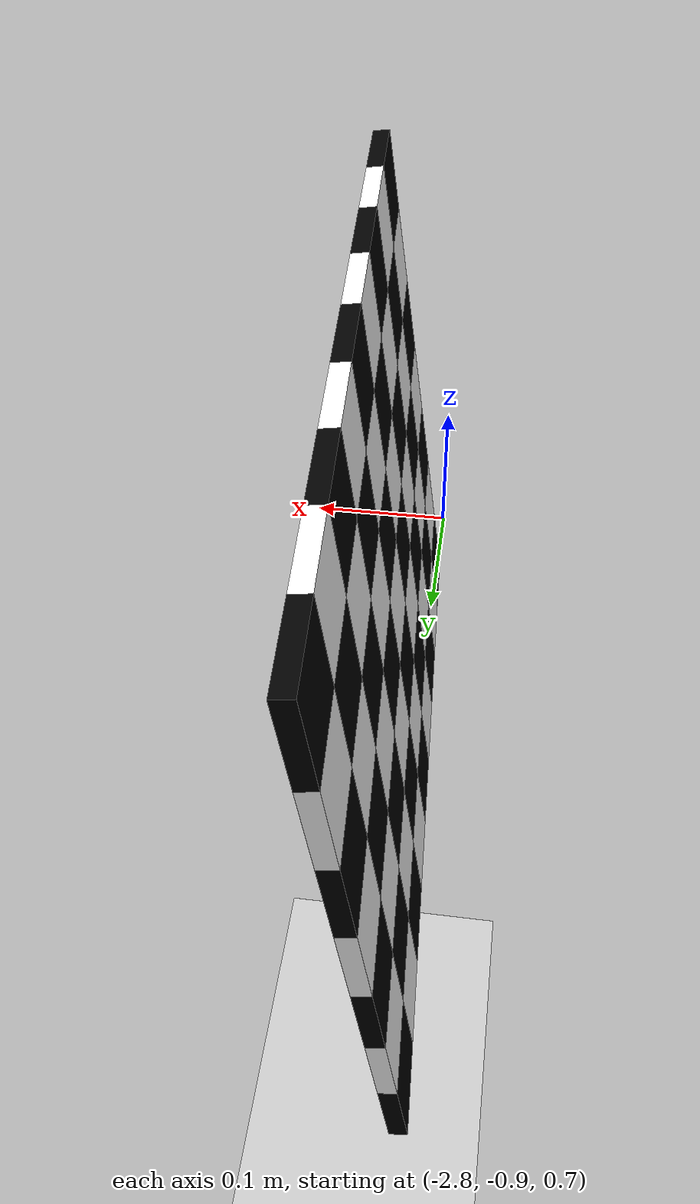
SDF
<sdf version="1.5">
 <world name="default">
  <model name="ground_plane">
   <static>1</static>
   <link name="link">
    <collision name="collision">
     <geometry><plane><normal>0 0 1</normal><size>100 100</size></plane></geometry>
     <surface><friction><ode><mu>100</mu><mu2>50</mu2></ode></friction></surface>
    </collision>
    <visual name="visual">
     <cast_shadows>0</cast_shadows>
     <geometry><plane><normal>0 0 1</normal><size>100 100</size></plane></geometry>
     <material>
      <script><uri>file://media/materials/scripts/gazebo.material</uri><name>Gazebo/Grey</name></script>
     </material>
    </visual>
    <velocity_decay><linear>0</linear><angular>0</angular></velocity_decay>
   </link>
  </model>
  <model name="checkerboard">
   <static>1</static>
   <link name="square_01">
    <visual name="visual">
     <geometry><box><size>0.05 0.05 0.01</size></box></geometry>
     <material><diffuse>0 0 0 1</diffuse><specular>0 0 0 1</specular><ambient>0 0 0 1</ambient></material>
    </visual>
    <velocity_decay><linear>0</linear><angular>0</angular></velocity_decay>
   </link>
   <link name="square_02">
    <pose>0.05 0 0 0 -0 0</pose>
    <visual name="visual">
     <geometry><box><size>0.05 0.05 0.01</size></box></geometry>
     <material><diffuse>1 1 1 1</diffuse><specular>1 1 1 1</specular><ambient>1 1 1 1</ambient></material>
    </visual>
    <velocity_decay><linear>0</linear><angular>0</angular></velocity_decay>
   </link>
   <link name="square_03">
    <pose>0.1 0 0 0 -0 0</pose>
    <visual name="visual">
     <geometry><box><size>0.05 0.05 0.01</size></box></geometry>
     <material><diffuse>0 0 0 1</diffuse><specular>0 0 0 1</specular><ambient>0 0 0 1</ambient></material>
    </visual>
    <velocity_decay><linear>0</linear><angular>0</angular></velocity_decay>
   </link>
   <link name="square_00.4">
    <pose>0.15 0 0 0 -0 0</pose>
    <visual name="visual">
     <geometry><box><size>0.05 0.05 0.01</size></box></geometry>
     <material><diffuse>1 1 1 1</diffuse><specular>1 1 1 1</specular><ambient>1 1 1 1</ambient></material>
    </visual>
    <velocity_decay><linear>0</linear><angular>0</angular></velocity_decay>
   </link>
   <link name="square_05">
    <pose>0.2 0 0 0 -0 0</pose>
    <visual name="visual">
     <geometry><box><size>0.05 0.05 0.01</size></box></geometry>
     <material><diffuse>0 0 0 1</diffuse><specular>0 0 0 1</specular><ambient>0 0 0 1</ambient></material>
    </visual>
    <velocity_decay><linear>0</linear><angular>0</angular></velocity_decay>
   </link>
   <link name="square_06">
    <pose>0.25 0 0 0 -0 0</pose>
    <visual name="visual">
     <geometry><box><size>0.05 0.05 0.01</size></box></geometry>
     <material><diffuse>1 1 1 1</diffuse><specular>1 1 1 1</specular><ambient>1 1 1 1</ambient></material>
    </visual>
    <velocity_decay><linear>0</linear><angular>0</angular></velocity_decay>
   </link>
   <link name="square_07">
    <pose>0.3 0 0 0 -0 0</pose>
    <visual name="visual">
     <geometry><box><size>0.05 0.05 0.01</size></box></geometry>
     <material><diffuse>0 0 0 1</diffuse><specular>0 0 0 1</specular><ambient>0 0 0 1</ambient></material>
    </visual>
    <velocity_decay><linear>0</linear><angular>0</angular></velocity_decay>
   </link>
   <link name="square_08">
    <pose>0.35 0 0 0 -0 0</pose>
    <visual name="visual">
     <geometry><box><size>0.05 0.05 0.01</size></box></geometry>
     <material><diffuse>1 1 1 1</diffuse><specular>1 1 1 1</specular><ambient>1 1 1 1</ambient></material>
    </visual>
    <velocity_decay><linear>0</linear><angular>0</angular></velocity_decay>
   </link>
   <link name="square_09">
    <pose>0.4 0 0 0 -0 0</pose>
    <visual name="visual">
     <geometry><box><size>0.05 0.05 0.01</size></box></geometry>
     <material><diffuse>0 0 0 1</diffuse><specular>0 0 0 1</specular><ambient>0 0 0 1</ambient></material>
    </visual>
    <velocity_decay><linear>0</linear><angular>0</angular></velocity_decay>
   </link>
   <link name="square_0.051">
    <pose>0 0.05 0 0 -0 0</pose>
    <visual name="visual">
     <geometry><box><size>0.05 0.05 0.01</size></box></geometry>
     <material><diffuse>1 1 1 1</diffuse><specular>1 1 1 1</specular><ambient>1 1 1 1</ambient></material>
    </visual>
    <velocity_decay><linear>0</linear><angular>0</angular></velocity_decay>
   </link>
   <link name="square_0.052">
    <pose>0.05 0.05 0 0 -0 0</pose>
    <visual name="visual">
     <geometry><box><size>0.05 0.05 0.01</size></box></geometry>
     <material><diffuse>0 0 0 1</diffuse><specular>0 0 0 1</specular><ambient>0 0 0 1</ambient></material>
    </visual>
    <velocity_decay><linear>0</linear><angular>0</angular></velocity_decay>
   </link>
   <link name="square_0.053">
    <pose>0.1 0.05 0 0 -0 0</pose>
    <visual name="visual">
     <geometry><box><size>0.05 0.05 0.01</size></box></geometry>
     <material><diffuse>1 1 1 1</diffuse><specular>1 1 1 1</specular><ambient>1 1 1 1</ambient></material>
    </visual>
    <velocity_decay><linear>0</linear><angular>0</angular></velocity_decay>
   </link>
   <link name="square_0.050.4">
    <pose>0.15 0.05 0 0 -0 0</pose>
    <visual name="visual">
     <geometry><box><size>0.05 0.05 0.01</size></box></geometry>
     <material><diffuse>0 0 0 1</diffuse><specular>0 0 0 1</specular><ambient>0 0 0 1</ambient></material>
    </visual>
    <velocity_decay><linear>0</linear><angular>0</angular></velocity_decay>
   </link>
   <link name="square_0.055">
    <pose>0.2 0.05 0 0 -0 0</pose>
    <visual name="visual">
     <geometry><box><size>0.05 0.05 0.01</size></box></geometry>
     <material><diffuse>1 1 1 1</diffuse><specular>1 1 1 1</specular><ambient>1 1 1 1</ambient></material>
    </visual>
    <velocity_decay><linear>0</linear><angular>0</angular></velocity_decay>
   </link>
   <link name="square_0.056">
    <pose>0.25 0.05 0 0 -0 0</pose>
    <visual name="visual">
     <geometry><box><size>0.05 0.05 0.01</size></box></geometry>
     <material><diffuse>0 0 0 1</diffuse><specular>0 0 0 1</specular><ambient>0 0 0 1</ambient></material>
    </visual>
    <velocity_decay><linear>0</linear><angular>0</angular></velocity_decay>
   </link>
   <link name="square_0.057">
    <pose>0.3 0.05 0 0 -0 0</pose>
    <visual name="visual">
     <geometry><box><size>0.05 0.05 0.01</size></box></geometry>
     <material><diffuse>1 1 1 1</diffuse><specular>1 1 1 1</specular><ambient>1 1 1 1</ambient></material>
    </visual>
    <velocity_decay><linear>0</linear><angular>0</angular></velocity_decay>
   </link>
   <link name="square_0.058">
    <pose>0.35 0.05 0 0 -0 0</pose>
    <visual name="visual">
     <geometry><box><size>0.05 0.05 0.01</size></box></geometry>
     <material><diffuse>0 0 0 1</diffuse><specular>0 0 0 1</specular><ambient>0 0 0 1</ambient></material>
    </visual>
    <velocity_decay><linear>0</linear><angular>0</angular></velocity_decay>
   </link>
   <link name="square_0.059">
    <pose>0.4 0.05 0 0 -0 0</pose>
    <visual name="visual">
     <geometry><box><size>0.05 0.05 0.01</size></box></geometry>
     <material><diffuse>1 1 1 1</diffuse><specular>1 1 1 1</specular><ambient>1 1 1 1</ambient></material>
    </visual>
    <velocity_decay><linear>0</linear><angular>0</angular></velocity_decay>
   </link>
   <link name="square_0.101">
    <pose>0 0.1 0 0 -0 0</pose>
    <visual name="visual">
     <geometry><box><size>0.05 0.05 0.01</size></box></geometry>
     <material><diffuse>0 0 0 1</diffuse><specular>0 0 0 1</specular><ambient>0 0 0 1</ambient></material>
    </visual>
    <velocity_decay><linear>0</linear><angular>0</angular></velocity_decay>
   </link>
   <link name="square_0.102">
    <pose>0.05 0.1 0 0 -0 0</pose>
    <visual name="visual">
     <geometry><box><size>0.05 0.05 0.01</size></box></geometry>
     <material><diffuse>1 1 1 1</diffuse><specular>1 1 1 1</specular><ambient>1 1 1 1</ambient></material>
    </visual>
    <velocity_decay><linear>0</linear><angular>0</angular></velocity_decay>
   </link>
   <link name="square_0.103">
    <pose>0.1 0.1 0 0 -0 0</pose>
    <visual name="visual">
     <geometry><box><size>0.05 0.05 0.01</size></box></geometry>
     <material><diffuse>0 0 0 1</diffuse><specular>0 0 0 1</specular><ambient>0 0 0 1</ambient></material>
    </visual>
    <velocity_decay><linear>0</linear><angular>0</angular></velocity_decay>
   </link>
   <link name="square_0.100.4">
    <pose>0.15 0.1 0 0 -0 0</pose>
    <visual name="visual">
     <geometry><box><size>0.05 0.05 0.01</size></box></geometry>
     <material><diffuse>1 1 1 1</diffuse><specular>1 1 1 1</specular><ambient>1 1 1 1</ambient></material>
    </visual>
    <velocity_decay><linear>0</linear><angular>0</angular></velocity_decay>
   </link>
   <link name="square_0.105">
    <pose>0.2 0.1 0 0 -0 0</pose>
    <visual name="visual">
     <geometry><box><size>0.05 0.05 0.01</size></box></geometry>
     <material><diffuse>0 0 0 1</diffuse><specular>0 0 0 1</specular><ambient>0 0 0 1</ambient></material>
    </visual>
    <velocity_decay><linear>0</linear><angular>0</angular></velocity_decay>
   </link>
   <link name="square_0.106">
    <pose>0.25 0.1 0 0 -0 0</pose>
    <visual name="visual">
     <geometry><box><size>0.05 0.05 0.01</size></box></geometry>
     <material><diffuse>1 1 1 1</diffuse><specular>1 1 1 1</specular><ambient>1 1 1 1</ambient></material>
    </visual>
    <velocity_decay><linear>0</linear><angular>0</angular></velocity_decay>
   </link>
   <link name="square_0.107">
    <pose>0.3 0.1 0 0 -0 0</pose>
    <visual name="visual">
     <geometry><box><size>0.05 0.05 0.01</size></box></geometry>
     <material><diffuse>0 0 0 1</diffuse><specular>0 0 0 1</specular><ambient>0 0 0 1</ambient></material>
    </visual>
    <velocity_decay><linear>0</linear><angular>0</angular></velocity_decay>
   </link>
   <link name="square_0.108">
    <pose>0.35 0.1 0 0 -0 0</pose>
    <visual name="visual">
     <geometry><box><size>0.05 0.05 0.01</size></box></geometry>
     <material><diffuse>1 1 1 1</diffuse><specular>1 1 1 1</specular><ambient>1 1 1 1</ambient></material>
    </visual>
    <velocity_decay><linear>0</linear><angular>0</angular></velocity_decay>
   </link>
   <link name="square_0.109">
    <pose>0.4 0.1 0 0 -0 0</pose>
    <visual name="visual">
     <geometry><box><size>0.05 0.05 0.01</size></box></geometry>
     <material><diffuse>0 0 0 1</diffuse><specular>0 0 0 1</specular><ambient>0 0 0 1</ambient></material>
    </visual>
    <velocity_decay><linear>0</linear><angular>0</angular></velocity_decay>
   </link>
   <link name="square_0.151">
    <pose>0 0.15 0 0 -0 0</pose>
    <visual name="visual">
     <geometry><box><size>0.05 0.05 0.01</size></box></geometry>
     <material><diffuse>1 1 1 1</diffuse><specular>1 1 1 1</specular><ambient>1 1 1 1</ambient></material>
    </visual>
    <velocity_decay><linear>0</linear><angular>0</angular></velocity_decay>
   </link>
   <link name="square_0.152">
    <pose>0.05 0.15 0 0 -0 0</pose>
    <visual name="visual">
     <geometry><box><size>0.05 0.05 0.01</size></box></geometry>
     <material><diffuse>0 0 0 1</diffuse><specular>0 0 0 1</specular><ambient>0 0 0 1</ambient></material>
    </visual>
    <velocity_decay><linear>0</linear><angular>0</angular></velocity_decay>
   </link>
   <link name="square_0.153">
    <pose>0.1 0.15 0 0 -0 0</pose>
    <visual name="visual">
     <geometry><box><size>0.05 0.05 0.01</size></box></geometry>
     <material><diffuse>1 1 1 1</diffuse><specular>1 1 1 1</specular><ambient>1 1 1 1</ambient></material>
    </visual>
    <velocity_decay><linear>0</linear><angular>0</angular></velocity_decay>
   </link>
   <link name="square_0.150.4">
    <pose>0.15 0.15 0 0 -0 0</pose>
    <visual name="visual">
     <geometry><box><size>0.05 0.05 0.01</size></box></geometry>
     <material><diffuse>0 0 0 1</diffuse><specular>0 0 0 1</specular><ambient>0 0 0 1</ambient></material>
    </visual>
    <velocity_decay><linear>0</linear><angular>0</angular></velocity_decay>
   </link>
   <link name="square_0.155">
    <pose>0.2 0.15 0 0 -0 0</pose>
    <visual name="visual">
     <geometry><box><size>0.05 0.05 0.01</size></box></geometry>
     <material><diffuse>1 1 1 1</diffuse><specular>1 1 1 1</specular><ambient>1 1 1 1</ambient></material>
    </visual>
    <velocity_decay><linear>0</linear><angular>0</angular></velocity_decay>
   </link>
   <link name="square_0.156">
    <pose>0.25 0.15 0 0 -0 0</pose>
    <visual name="visual">
     <geometry><box><size>0.05 0.05 0.01</size></box></geometry>
     <material><diffuse>0 0 0 1</diffuse><specular>0 0 0 1</specular><ambient>0 0 0 1</ambient></material>
    </visual>
    <velocity_decay><linear>0</linear><angular>0</angular></velocity_decay>
   </link>
   <link name="square_0.157">
    <pose>0.3 0.15 0 0 -0 0</pose>
    <visual name="visual">
     <geometry><box><size>0.05 0.05 0.01</size></box></geometry>
     <material><diffuse>1 1 1 1</diffuse><specular>1 1 1 1</specular><ambient>1 1 1 1</ambient></material>
    </visual>
    <velocity_decay><linear>0</linear><angular>0</angular></velocity_decay>
   </link>
   <link name="square_0.158">
    <pose>0.35 0.15 0 0 -0 0</pose>
    <visual name="visual">
     <geometry><box><size>0.05 0.05 0.01</size></box></geometry>
     <material><diffuse>0 0 0 1</diffuse><specular>0 0 0 1</specular><ambient>0 0 0 1</ambient></material>
    </visual>
    <velocity_decay><linear>0</linear><angular>0</angular></velocity_decay>
   </link>
   <link name="square_0.159">
    <pose>0.4 0.15 0 0 -0 0</pose>
    <visual name="visual">
     <geometry><box><size>0.05 0.05 0.01</size></box></geometry>
     <material><diffuse>1 1 1 1</diffuse><specular>1 1 1 1</specular><ambient>1 1 1 1</ambient></material>
    </visual>
    <velocity_decay><linear>0</linear><angular>0</angular></velocity_decay>
   </link>
   <link name="square_0.21">
    <pose>0 0.2 0 0 -0 0</pose>
    <visual name="visual">
     <geometry><box><size>0.05 0.05 0.01</size></box></geometry>
     <material><diffuse>0 0 0 1</diffuse><specular>0 0 0 1</specular><ambient>0 0 0 1</ambient></material>
    </visual>
    <velocity_decay><linear>0</linear><angular>0</angular></velocity_decay>
   </link>
   <link name="square_0.22">
    <pose>0.05 0.2 0 0 -0 0</pose>
    <visual name="visual">
     <geometry><box><size>0.05 0.05 0.01</size></box></geometry>
     <material><diffuse>1 1 1 1</diffuse><specular>1 1 1 1</specular><ambient>1 1 1 1</ambient></material>
    </visual>
    <velocity_decay><linear>0</linear><angular>0</angular></velocity_decay>
   </link>
   <link name="square_0.23">
    <pose>0.1 0.2 0 0 -0 0</pose>
    <visual name="visual">
     <geometry><box><size>0.05 0.05 0.01</size></box></geometry>
     <material><diffuse>0 0 0 1</diffuse><specular>0 0 0 1</specular><ambient>0 0 0 1</ambient></material>
    </visual>
    <velocity_decay><linear>0</linear><angular>0</angular></velocity_decay>
   </link>
   <link name="square_0.20.4">
    <pose>0.15 0.2 0 0 -0 0</pose>
    <visual name="visual">
     <geometry><box><size>0.05 0.05 0.01</size></box></geometry>
     <material><diffuse>1 1 1 1</diffuse><specular>1 1 1 1</specular><ambient>1 1 1 1</ambient></material>
    </visual>
    <velocity_decay><linear>0</linear><angular>0</angular></velocity_decay>
   </link>
   <link name="square_0.25">
    <pose>0.2 0.2 0 0 -0 0</pose>
    <visual name="visual">
     <geometry><box><size>0.05 0.05 0.01</size></box></geometry>
     <material><diffuse>0 0 0 1</diffuse><specular>0 0 0 1</specular><ambient>0 0 0 1</ambient></material>
    </visual>
    <velocity_decay><linear>0</linear><angular>0</angular></velocity_decay>
   </link>
   <link name="square_0.26">
    <pose>0.25 0.2 0 0 -0 0</pose>
    <visual name="visual">
     <geometry><box><size>0.05 0.05 0.01</size></box></geometry>
     <material><diffuse>1 1 1 1</diffuse><specular>1 1 1 1</specular><ambient>1 1 1 1</ambient></material>
    </visual>
    <velocity_decay><linear>0</linear><angular>0</angular></velocity_decay>
   </link>
   <link name="square_0.27">
    <pose>0.3 0.2 0 0 -0 0</pose>
    <visual name="visual">
     <geometry><box><size>0.05 0.05 0.01</size></box></geometry>
     <material><diffuse>0 0 0 1</diffuse><specular>0 0 0 1</specular><ambient>0 0 0 1</ambient></material>
    </visual>
    <velocity_decay><linear>0</linear><angular>0</angular></velocity_decay>
   </link>
   <link name="square_0.28">
    <pose>0.35 0.2 0 0 -0 0</pose>
    <visual name="visual">
     <geometry><box><size>0.05 0.05 0.01</size></box></geometry>
     <material><diffuse>1 1 1 1</diffuse><specular>1 1 1 1</specular><ambient>1 1 1 1</ambient></material>
    </visual>
    <velocity_decay><linear>0</linear><angular>0</angular></velocity_decay>
   </link>
   <link name="square_0.29">
    <pose>0.4 0.2 0 0 -0 0</pose>
    <visual name="visual">
     <geometry><box><size>0.05 0.05 0.01</size></box></geometry>
     <material><diffuse>0 0 0 1</diffuse><specular>0 0 0 1</specular><ambient>0 0 0 1</ambient></material>
    </visual>
    <velocity_decay><linear>0</linear><angular>0</angular></velocity_decay>
   </link>
   <link name="square_0.251">
    <pose>0 0.25 0 0 -0 0</pose>
    <visual name="visual">
     <geometry><box><size>0.05 0.05 0.01</size></box></geometry>
     <material><diffuse>1 1 1 1</diffuse><specular>1 1 1 1</specular><ambient>1 1 1 1</ambient></material>
    </visual>
    <velocity_decay><linear>0</linear><angular>0</angular></velocity_decay>
   </link>
   <link name="square_0.252">
    <pose>0.05 0.25 0 0 -0 0</pose>
    <visual name="visual">
     <geometry><box><size>0.05 0.05 0.01</size></box></geometry>
     <material><diffuse>0 0 0 1</diffuse><specular>0 0 0 1</specular><ambient>0 0 0 1</ambient></material>
    </visual>
    <velocity_decay><linear>0</linear><angular>0</angular></velocity_decay>
   </link>
   <link name="square_0.253">
    <pose>0.1 0.25 0 0 -0 0</pose>
    <visual name="visual">
     <geometry><box><size>0.05 0.05 0.01</size></box></geometry>
     <material><diffuse>1 1 1 1</diffuse><specular>1 1 1 1</specular><ambient>1 1 1 1</ambient></material>
    </visual>
    <velocity_decay><linear>0</linear><angular>0</angular></velocity_decay>
   </link>
   <link name="square_0.250.4">
    <pose>0.15 0.25 0 0 -0 0</pose>
    <visual name="visual">
     <geometry><box><size>0.05 0.05 0.01</size></box></geometry>
     <material><diffuse>0 0 0 1</diffuse><specular>0 0 0 1</specular><ambient>0 0 0 1</ambient></material>
    </visual>
    <velocity_decay><linear>0</linear><angular>0</angular></velocity_decay>
   </link>
   <link name="square_0.255">
    <pose>0.2 0.25 0 0 -0 0</pose>
    <visual name="visual">
     <geometry><box><size>0.05 0.05 0.01</size></box></geometry>
     <material><diffuse>1 1 1 1</diffuse><specular>1 1 1 1</specular><ambient>1 1 1 1</ambient></material>
    </visual>
    <velocity_decay><linear>0</linear><angular>0</angular></velocity_decay>
   </link>
   <link name="square_0.256">
    <pose>0.25 0.25 0 0 -0 0</pose>
    <visual name="visual">
     <geometry><box><size>0.05 0.05 0.01</size></box></geometry>
     <material><diffuse>0 0 0 1</diffuse><specular>0 0 0 1</specular><ambient>0 0 0 1</ambient></material>
    </visual>
    <velocity_decay><linear>0</linear><angular>0</angular></velocity_decay>
   </link>
   <link name="square_0.257">
    <pose>0.3 0.25 0 0 -0 0</pose>
    <visual name="visual">
     <geometry><box><size>0.05 0.05 0.01</size></box></geometry>
     <material><diffuse>1 1 1 1</diffuse><specular>1 1 1 1</specular><ambient>1 1 1 1</ambient></material>
    </visual>
    <velocity_decay><linear>0</linear><angular>0</angular></velocity_decay>
   </link>
   <link name="square_0.258">
    <pose>0.35 0.25 0 0 -0 0</pose>
    <visual name="visual">
     <geometry><box><size>0.05 0.05 0.01</size></box></geometry>
     <material><diffuse>0 0 0 1</diffuse><specular>0 0 0 1</specular><ambient>0 0 0 1</ambient></material>
    </visual>
    <velocity_decay><linear>0</linear><angular>0</angular></velocity_decay>
   </link>
   <link name="square_0.259">
    <pose>0.4 0.25 0 0 -0 0</pose>
    <visual name="visual">
     <geometry><box><size>0.05 0.05 0.01</size></box></geometry>
     <material><diffuse>1 1 1 1</diffuse><specular>1 1 1 1</specular><ambient>1 1 1 1</ambient></material>
    </visual>
    <velocity_decay><linear>0</linear><angular>0</angular></velocity_decay>
   </link>
   <link name="square_0.31">
    <pose>0 0.3 0 0 -0 0</pose>
    <visual name="visual">
     <geometry><box><size>0.05 0.05 0.01</size></box></geometry>
     <material><diffuse>0 0 0 1</diffuse><specular>0 0 0 1</specular><ambient>0 0 0 1</ambient></material>
    </visual>
    <velocity_decay><linear>0</linear><angular>0</angular></velocity_decay>
   </link>
   <link name="square_0.32">
    <pose>0.05 0.3 0 0 -0 0</pose>
    <visual name="visual">
     <geometry><box><size>0.05 0.05 0.01</size></box></geometry>
     <material><diffuse>1 1 1 1</diffuse><specular>1 1 1 1</specular><ambient>1 1 1 1</ambient></material>
    </visual>
    <velocity_decay><linear>0</linear><angular>0</angular></velocity_decay>
   </link>
   <link name="square_0.33">
    <pose>0.1 0.3 0 0 -0 0</pose>
    <visual name="visual">
     <geometry><box><size>0.05 0.05 0.01</size></box></geometry>
     <material><diffuse>0 0 0 1</diffuse><specular>0 0 0 1</specular><ambient>0 0 0 1</ambient></material>
    </visual>
    <velocity_decay><linear>0</linear><angular>0</angular></velocity_decay>
   </link>
   <link name="square_0.34">
    <pose>0.15 0.3 0 0 -0 0</pose>
    <visual name="visual">
     <geometry><box><size>0.05 0.05 0.01</size></box></geometry>
     <material><diffuse>1 1 1 1</diffuse><specular>1 1 1 1</specular><ambient>1 1 1 1</ambient></material>
    </visual>
    <velocity_decay><linear>0</linear><angular>0</angular></velocity_decay>
   </link>
   <link name="square_0.35">
    <pose>0.2 0.3 0 0 -0 0</pose>
    <visual name="visual">
     <geometry><box><size>0.05 0.05 0.01</size></box></geometry>
     <material><diffuse>0 0 0 1</diffuse><specular>0 0 0 1</specular><ambient>0 0 0 1</ambient></material>
    </visual>
    <velocity_decay><linear>0</linear><angular>0</angular></velocity_decay>
   </link>
   <link name="square_0.36">
    <pose>0.25 0.3 0 0 -0 0</pose>
    <visual name="visual">
     <geometry><box><size>0.05 0.05 0.01</size></box></geometry>
     <material><diffuse>1 1 1 1</diffuse><specular>1 1 1 1</specular><ambient>1 1 1 1</ambient></material>
    </visual>
    <velocity_decay><linear>0</linear><angular>0</angular></velocity_decay>
   </link>
   <link name="square_0.37">
    <pose>0.3 0.3 0 0 -0 0</pose>
    <visual name="visual">
     <geometry><box><size>0.05 0.05 0.01</size></box></geometry>
     <material><diffuse>0 0 0 1</diffuse><specular>0 0 0 1</specular><ambient>0 0 0 1</ambient></material>
    </visual>
    <velocity_decay><linear>0</linear><angular>0</angular></velocity_decay>
   </link>
   <link name="square_0.38">
    <pose>0.35 0.3 0 0 -0 0</pose>
    <visual name="visual">
     <geometry><box><size>0.05 0.05 0.01</size></box></geometry>
     <material><diffuse>1 1 1 1</diffuse><specular>1 1 1 1</specular><ambient>1 1 1 1</ambient></material>
    </visual>
    <velocity_decay><linear>0</linear><angular>0</angular></velocity_decay>
   </link>
   <link name="square_0.39">
    <pose>0.4 0.3 0 0 -0 0</pose>
    <visual name="visual">
     <geometry><box><size>0.05 0.05 0.01</size></box></geometry>
     <material><diffuse>0 0 0 1</diffuse><specular>0 0 0 1</specular><ambient>0 0 0 1</ambient></material>
    </visual>
    <velocity_decay><linear>0</linear><angular>0</angular></velocity_decay>
   </link>
   <pose>-2.77636 -0.446954 0.998667 -1.69774 -5.55112e-17 -1.5193</pose>
  </model>
 </world>
</sdf>
